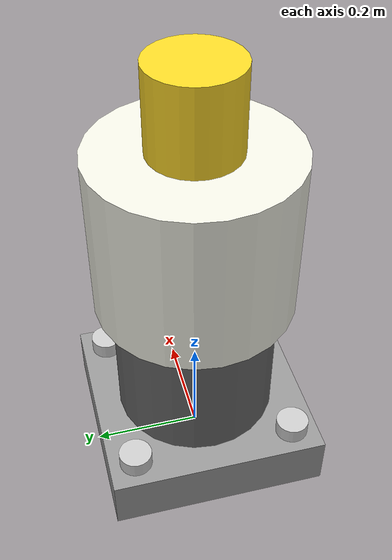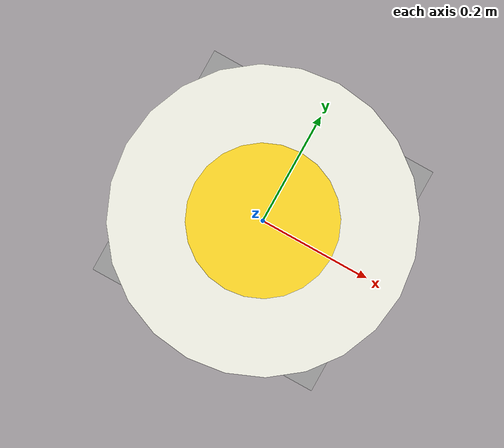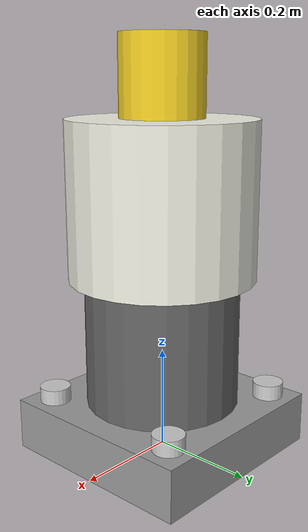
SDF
<?xml version="1.0"?>

<sdf version="1.10">

<model name="ct_transformer_b">

  <static>true</static>

  <link name="body">

    <!-- MAIN CT CORE -->
    <visual name="ct_core">
      <pose>0 0 0.3 0 0 0</pose>
      <geometry>
        <cylinder>
          <radius>0.15</radius>
          <length>0.4</length>
        </cylinder>
      </geometry>
      <material>
        <ambient>0.3 0.3 0.3 1</ambient>
        <diffuse>0.4 0.4 0.4 1</diffuse>
      </material>
    </visual>

    <!-- PORCELAIN INSULATOR -->
    <visual name="insulator">
      <pose>0 0 0.5 0 0 0</pose>
      <geometry>
        <cylinder>
          <radius>0.18</radius>
          <length>0.3</length>
        </cylinder>
      </geometry>
      <material>
        <ambient>0.9 0.9 0.85 1</ambient>
        <diffuse>0.95 0.95 0.9 1</diffuse>
        <specular>0.3 0.3 0.3 1</specular>
      </material>
    </visual>

    <!-- TERMINAL LUG -->
    <visual name="terminal">
      <pose>0 0 0.7 0 0 0</pose>
      <geometry>
        <cylinder>
          <radius>0.08</radius>
          <length>0.2</length>
        </cylinder>
      </geometry>
      <material>
        <ambient>0.90 0.75 0.10 1</ambient>
        <diffuse>1.0 0.85 0.15 1</diffuse>
      </material>
    </visual>

    <!-- MOUNTING BASE -->
    <visual name="base_plate">
      <pose>0 0 0.05 0 0 0</pose>
      <geometry>
        <box>
          <size>0.4 0.4 0.1</size>
        </box>
      </geometry>
      <material>
        <ambient>0.5 0.5 0.5 1</ambient>
        <diffuse>0.6 0.6 0.6 1</diffuse>
      </material>
    </visual>

    <!-- MOUNTING STUDS -->
    <visual name="stud_1">
      <pose>-0.15 -0.15 0.08 0 0 0</pose>
      <geometry>
        <cylinder>
          <radius>0.03</radius>
          <length>0.1</length>
        </cylinder>
      </geometry>
      <material>
        <ambient>0.7 0.7 0.7 1</ambient>
        <diffuse>0.8 0.8 0.8 1</diffuse>
      </material>
    </visual>

    <visual name="stud_2">
      <pose>0.15 -0.15 0.08 0 0 0</pose>
      <geometry>
        <cylinder>
          <radius>0.03</radius>
          <length>0.1</length>
        </cylinder>
      </geometry>
      <material>
        <ambient>0.7 0.7 0.7 1</ambient>
        <diffuse>0.8 0.8 0.8 1</diffuse>
      </material>
    </visual>

    <visual name="stud_3">
      <pose>-0.15 0.15 0.08 0 0 0</pose>
      <geometry>
        <cylinder>
          <radius>0.03</radius>
          <length>0.1</length>
        </cylinder>
      </geometry>
      <material>
        <ambient>0.7 0.7 0.7 1</ambient>
        <diffuse>0.8 0.8 0.8 1</diffuse>
      </material>
    </visual>

    <visual name="stud_4">
      <pose>0.15 0.15 0.08 0 0 0</pose>
      <geometry>
        <cylinder>
          <radius>0.03</radius>
          <length>0.1</length>
        </cylinder>
      </geometry>
      <material>
        <ambient>0.7 0.7 0.7 1</ambient>
        <diffuse>0.8 0.8 0.8 1</diffuse>
      </material>
    </visual>

    <!-- COLLISION -->
    <collision name="collision">
      <pose>0 0 0.3 0 0 0</pose>
      <geometry>
        <cylinder>
          <radius>0.2</radius>
          <length>0.8</length>
        </cylinder>
      </geometry>
    </collision>

  </link>

</model>

</sdf>
